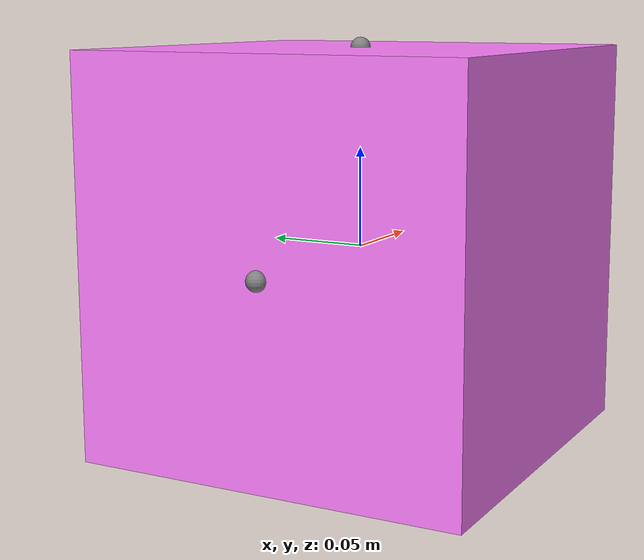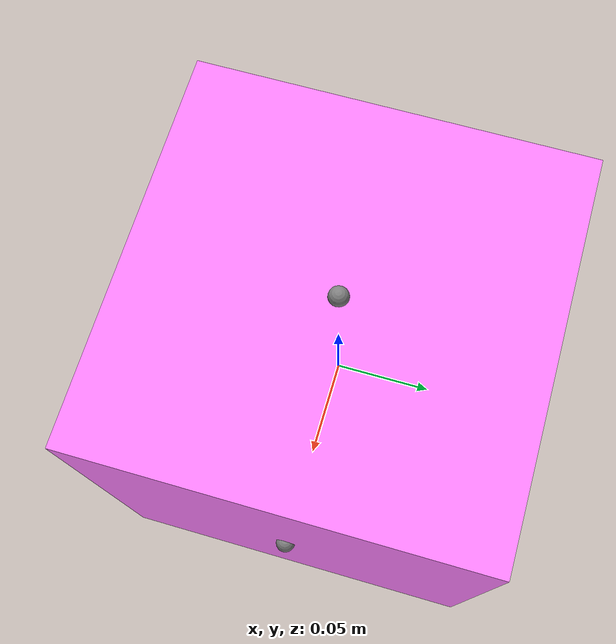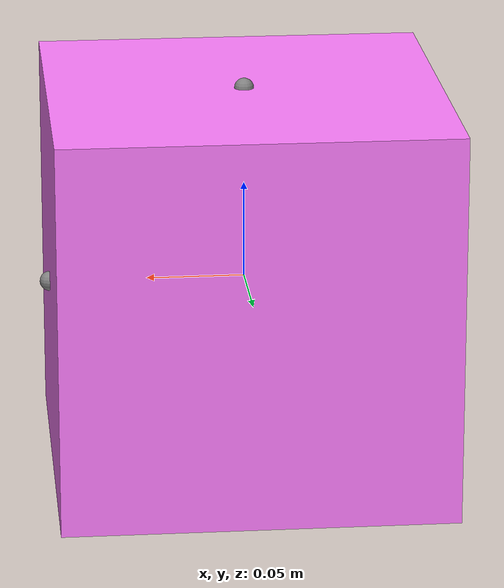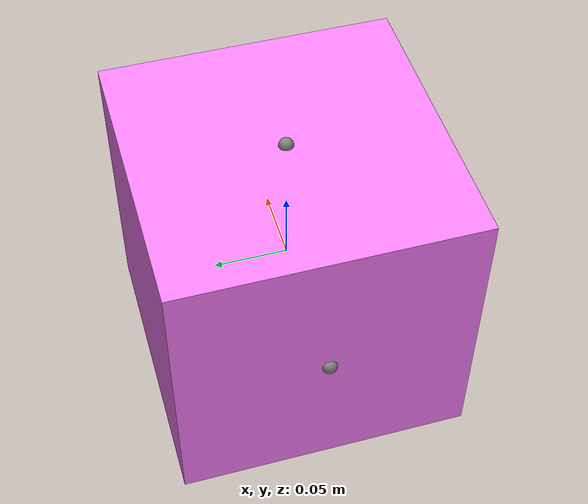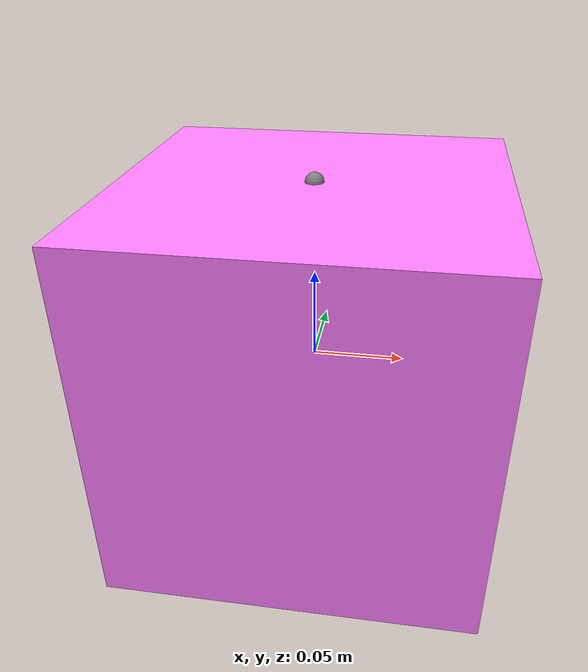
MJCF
<mujoco>
            <compiler angle="radian" autolimits="true" />
            <compiler meshdir="asset" texturedir="asset" assetdir="asset" />
            <option gravity="0 0 0" />
            <default class="main">
            <geom friction="0 0 0" solimp="0.9 1 0.001 0.01 20" solref="0.02 1" condim="1" />
        </default>

        <visual>
            <headlight diffuse="0.7 0.7 0.7" ambient="0.5 0.5 0.5" />
            <global offwidth="1920" offheight="1080" />
        </visual>

        <asset>
            <texture type="skybox" builtin="gradient" rgb1="0 0.5 0.7" rgb2="0 0 0" width="512" height="512" />
            <texture type="2d" name="checks1" builtin="checker" rgb1="1 1 1" rgb2="0 0 0" width="256" height="256" />
            <material name="test_color" texture="checks1" texuniform="true" texrepeat="2 2" />
            <material name="reflectance" reflectance=".4" />
            <texture name="grid" type="2d" builtin="checker" width="512" height="512" rgb1="1.0 0.6235 0.1098" rgb2="1.0 0.749 0.4118" />
            <texture name="white-texture-background" type="2d" file="/home/aryansatpathy/DevStuff/cmu/PHO/sim/geom_sources/fixed_sources/rocket/rocket.white-texture-background.png" content_type="image/png" />
            <material name="pulley" texture="grid" texrepeat="2 2" texuniform="true" />

        </asset>
        <worldbody><body name="electromagneticentity_0.particle" pos="0.0 0.0 0.0" quat="1.0 0.0 0.0 0.0">
<geom name="electromagneticentity_0.particle.geom" type="box" pos="0 0 0" size="0.1 0.1 0.1" rgba="1.0 0.5 1.0 1.0" mass="0.67" quat="0 0 0 1" condim="1" contype="1" conaffinity="1" />
<site name="electromagneticentity_0.particle.top-1" pos="0.0 0 0.1" quat="1.0 -0.0 -0.0 -0.0" />
<site name="electromagneticentity_0.particle.sensor" pos="0 0 0" quat="1.0 -0.0 -0.0 -0.0" />
<site name="electromagneticentity_0.particle.center" pos="0 0 0" quat="1.0 -0.0 -0.0 -0.0" />
<site name="electromagneticentity_0.particle.left" pos="-0.1 0 0" quat="1.0 -0.0 -0.0 -0.0" />
<site name="electromagneticentity_0.particle.right" pos="0.1 0 0" quat="1.0 -0.0 -0.0 -0.0" />
<site name="electromagneticentity_0.particle.bottom" pos="0 0 -0.1" quat="1.0 -0.0 -0.0 -0.0" />
<joint name="electromagneticentity_0.particle.joint" type="free" axis="1 1 1" pos="0 0 0" />
</body>
</worldbody><sensor>

        </sensor>
        <custom>

        </custom>
        <contact>

        </contact>
        <actuator>

        </actuator>
    </mujoco>
